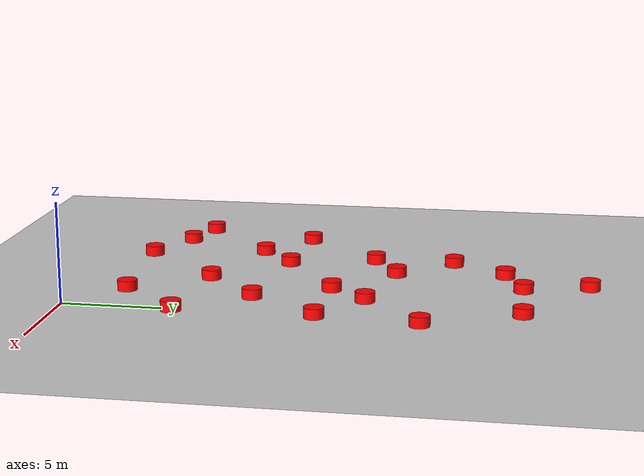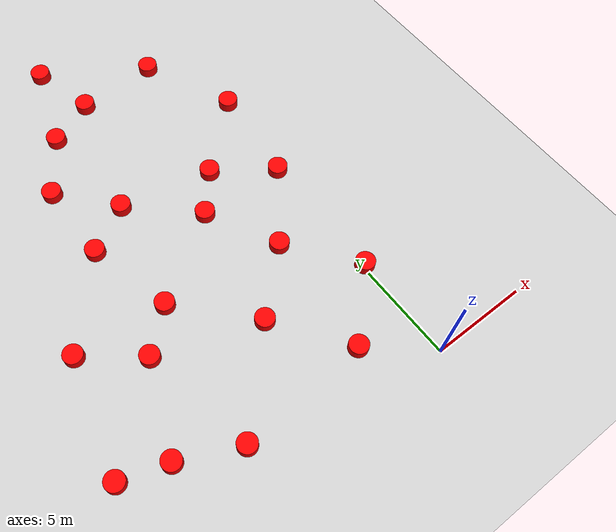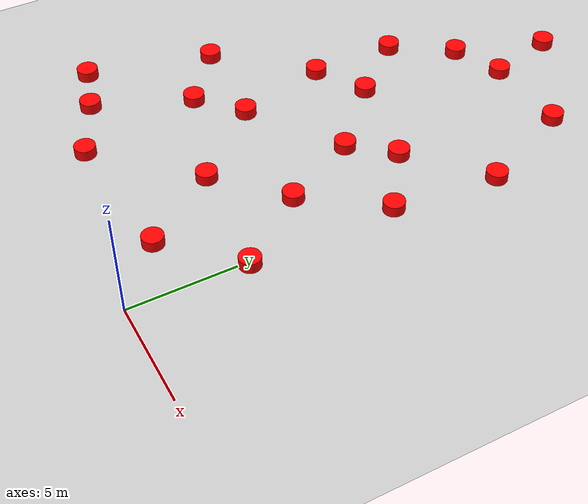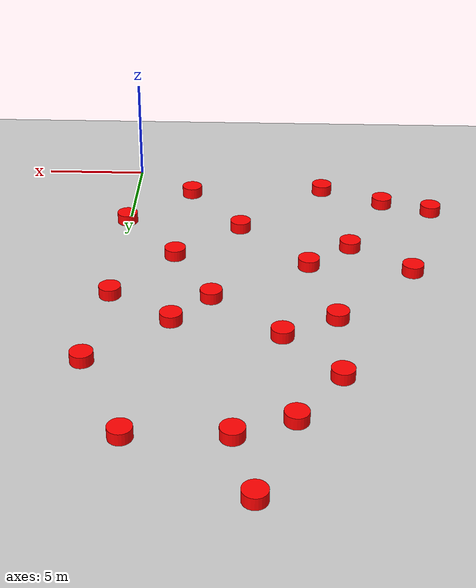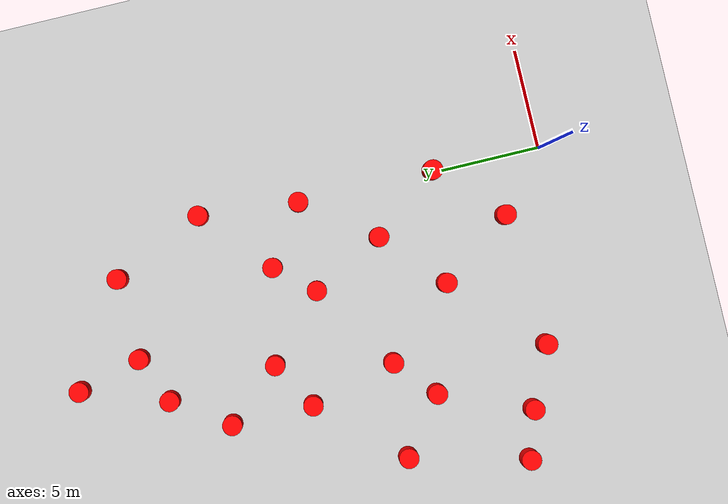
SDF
<sdf version="1.7">
 <world name="default">
  <model name="ground_plane">
   <static>1</static>
   <link name="link">
    <collision name="collision">
     <geometry><plane><normal>0 0 1</normal><size>100 100</size></plane></geometry>
     <surface><friction><ode><mu>100</mu><mu2>50</mu2></ode></friction></surface>
    </collision>
    <visual name="visual">
     <cast_shadows>0</cast_shadows>
     <geometry><plane><normal>0 0 1</normal><size>100 100</size></plane></geometry>
     <material>
      <script><uri>file://media/materials/scripts/gazebo.material</uri><name>Gazebo/Grey</name></script>
     </material>
    </visual>
   </link>
  </model>
  <model name="prognocol">
   <link name="link_1">
    <inertial>
     <mass>1</mass>
     <inertia><ixx>0.145833</ixx><ixy>0</ixy><ixz>0</ixz><iyy>0.145833</iyy><iyz>0</iyz><izz>0.125</izz></inertia>
    </inertial>
    <pose>-0.052879 4.93849 0.5 0 -0 0</pose>
    <visual name="visual">
     <geometry><cylinder><radius>0.5</radius><length>1</length></cylinder></geometry>
     <material>
      <lighting>1</lighting>
      <script><uri>file://media/materials/scripts/gazebo.material</uri><name>Gazebo/Grey</name></script>
      <shader type="pixel"><normal_map>__default__</normal_map></shader>
      <ambient>1 0 0 0</ambient>
      <diffuse>0.7 0.7 0.7 1</diffuse>
      <specular>0.01 0.01 0.01 1</specular>
      <emissive>0 0 0 1</emissive>
     </material>
    </visual>
    <collision name="collision">
     <geometry><cylinder><radius>0.0005</radius><length>1e-05</length></cylinder></geometry>
     <surface>
      <friction>
       <ode><mu>1</mu><mu2>1</mu2><fdir1>0 0 0</fdir1><slip1>0</slip1><slip2>0</slip2></ode>
       <torsional>
        <coefficient>1</coefficient>
        <patch_radius>0</patch_radius>
        <surface_radius>0</surface_radius>
        <use_patch_radius>1</use_patch_radius>
        <ode><slip>0</slip></ode>
       </torsional>
      </friction>
      <bounce><restitution_coefficient>0</restitution_coefficient><threshold>1e+06</threshold></bounce>
      <contact>
       <collide_without_contact>0</collide_without_contact>
       <collide_without_contact_bitmask>1</collide_without_contact_bitmask>
       <collide_bitmask>1</collide_bitmask>
       <ode>
        <soft_cfm>0</soft_cfm>
        <soft_erp>0.2</soft_erp>
        <kp>1e+13</kp>
        <kd>1</kd>
        <max_vel>0.01</max_vel>
        <min_depth>0</min_depth>
       </ode>
       <bullet>
        <split_impulse>1</split_impulse>
        <split_impulse_penetration_threshold>-0.01</split_impulse_penetration_threshold>
        <soft_cfm>0</soft_cfm>
        <soft_erp>0.2</soft_erp>
        <kp>1e+13</kp>
        <kd>1</kd>
       </bullet>
      </contact>
     </surface>
    </collision>
   </link>
   <link name="link_1_clone_1">
    <inertial>
     <mass>1</mass>
     <inertia><ixx>0.145833</ixx><ixy>0</ixy><ixz>0</ixz><iyy>0.145833</iyy><iyz>0</iyz><izz>0.125</izz></inertia>
    </inertial>
    <pose>2.98374 7.97688 0.5 0 -0 0</pose>
    <visual name="visual">
     <geometry><cylinder><radius>0.5</radius><length>1</length></cylinder></geometry>
     <material>
      <lighting>1</lighting>
      <script><uri>file://media/materials/scripts/gazebo.material</uri><name>Gazebo/Grey</name></script>
      <shader type="pixel"><normal_map>__default__</normal_map></shader>
      <ambient>1 0 0 0</ambient>
      <diffuse>0.7 0.7 0.7 1</diffuse>
      <specular>0.01 0.01 0.01 1</specular>
      <emissive>0 0 0 1</emissive>
     </material>
    </visual>
    <collision name="collision">
     <geometry><cylinder><radius>0.0005</radius><length>1e-05</length></cylinder></geometry>
     <surface>
      <friction>
       <ode><mu>1</mu><mu2>1</mu2><fdir1>0 0 0</fdir1><slip1>0</slip1><slip2>0</slip2></ode>
       <torsional>
        <coefficient>1</coefficient>
        <patch_radius>0</patch_radius>
        <surface_radius>0</surface_radius>
        <use_patch_radius>1</use_patch_radius>
        <ode><slip>0</slip></ode>
       </torsional>
      </friction>
      <bounce><restitution_coefficient>0</restitution_coefficient><threshold>1e+06</threshold></bounce>
      <contact>
       <collide_without_contact>0</collide_without_contact>
       <collide_without_contact_bitmask>1</collide_without_contact_bitmask>
       <collide_bitmask>1</collide_bitmask>
       <ode>
        <soft_cfm>0</soft_cfm>
        <soft_erp>0.2</soft_erp>
        <kp>1e+13</kp>
        <kd>1</kd>
        <max_vel>0.01</max_vel>
        <min_depth>0</min_depth>
       </ode>
       <bullet>
        <split_impulse>1</split_impulse>
        <split_impulse_penetration_threshold>-0.01</split_impulse_penetration_threshold>
        <soft_cfm>0</soft_cfm>
        <soft_erp>0.2</soft_erp>
        <kp>1e+13</kp>
        <kd>1</kd>
       </bullet>
      </contact>
     </surface>
    </collision>
   </link>
   <link name="link_1_clone_10">
    <inertial>
     <mass>1</mass>
     <inertia><ixx>0.145833</ixx><ixy>0</ixy><ixz>0</ixz><iyy>0.145833</iyy><iyz>0</iyz><izz>0.125</izz></inertia>
    </inertial>
    <pose>-7.07233 16.5239 0.5 0 -0 0</pose>
    <visual name="visual">
     <geometry><cylinder><radius>0.5</radius><length>1</length></cylinder></geometry>
     <material>
      <lighting>1</lighting>
      <script><uri>file://media/materials/scripts/gazebo.material</uri><name>Gazebo/Grey</name></script>
      <shader type="pixel"><normal_map>__default__</normal_map></shader>
      <ambient>1 0 0 0</ambient>
      <diffuse>0.7 0.7 0.7 1</diffuse>
      <specular>0.01 0.01 0.01 1</specular>
      <emissive>0 0 0 1</emissive>
     </material>
    </visual>
    <collision name="collision">
     <geometry><cylinder><radius>0.0005</radius><length>1e-05</length></cylinder></geometry>
     <surface>
      <friction>
       <ode><mu>1</mu><mu2>1</mu2><fdir1>0 0 0</fdir1><slip1>0</slip1><slip2>0</slip2></ode>
       <torsional>
        <coefficient>1</coefficient>
        <patch_radius>0</patch_radius>
        <surface_radius>0</surface_radius>
        <use_patch_radius>1</use_patch_radius>
        <ode><slip>0</slip></ode>
       </torsional>
      </friction>
      <bounce><restitution_coefficient>0</restitution_coefficient><threshold>1e+06</threshold></bounce>
      <contact>
       <collide_without_contact>0</collide_without_contact>
       <collide_without_contact_bitmask>1</collide_without_contact_bitmask>
       <collide_bitmask>1</collide_bitmask>
       <ode>
        <soft_cfm>0</soft_cfm>
        <soft_erp>0.2</soft_erp>
        <kp>1e+13</kp>
        <kd>1</kd>
        <max_vel>0.01</max_vel>
        <min_depth>0</min_depth>
       </ode>
       <bullet>
        <split_impulse>1</split_impulse>
        <split_impulse_penetration_threshold>-0.01</split_impulse_penetration_threshold>
        <soft_cfm>0</soft_cfm>
        <soft_erp>0.2</soft_erp>
        <kp>1e+13</kp>
        <kd>1</kd>
       </bullet>
      </contact>
     </surface>
    </collision>
   </link>
   <link name="link_1_clone_11">
    <inertial>
     <mass>1</mass>
     <inertia><ixx>0.145833</ixx><ixy>0</ixy><ixz>0</ixz><iyy>0.145833</iyy><iyz>0</iyz><izz>0.125</izz></inertia>
    </inertial>
    <pose>0.092599 16.9013 0.5 0 -0 0</pose>
    <visual name="visual">
     <geometry><cylinder><radius>0.5</radius><length>1</length></cylinder></geometry>
     <material>
      <lighting>1</lighting>
      <script><uri>file://media/materials/scripts/gazebo.material</uri><name>Gazebo/Grey</name></script>
      <shader type="pixel"><normal_map>__default__</normal_map></shader>
      <ambient>1 0 0 0</ambient>
      <diffuse>0.7 0.7 0.7 1</diffuse>
      <specular>0.01 0.01 0.01 1</specular>
      <emissive>0 0 0 1</emissive>
     </material>
    </visual>
    <collision name="collision">
     <geometry><cylinder><radius>0.0005</radius><length>1e-05</length></cylinder></geometry>
     <surface>
      <friction>
       <ode><mu>1</mu><mu2>1</mu2><fdir1>0 0 0</fdir1><slip1>0</slip1><slip2>0</slip2></ode>
       <torsional>
        <coefficient>1</coefficient>
        <patch_radius>0</patch_radius>
        <surface_radius>0</surface_radius>
        <use_patch_radius>1</use_patch_radius>
        <ode><slip>0</slip></ode>
       </torsional>
      </friction>
      <bounce><restitution_coefficient>0</restitution_coefficient><threshold>1e+06</threshold></bounce>
      <contact>
       <collide_without_contact>0</collide_without_contact>
       <collide_without_contact_bitmask>1</collide_without_contact_bitmask>
       <collide_bitmask>1</collide_bitmask>
       <ode>
        <soft_cfm>0</soft_cfm>
        <soft_erp>0.2</soft_erp>
        <kp>1e+13</kp>
        <kd>1</kd>
        <max_vel>0.01</max_vel>
        <min_depth>0</min_depth>
       </ode>
       <bullet>
        <split_impulse>1</split_impulse>
        <split_impulse_penetration_threshold>-0.01</split_impulse_penetration_threshold>
        <soft_cfm>0</soft_cfm>
        <soft_erp>0.2</soft_erp>
        <kp>1e+13</kp>
        <kd>1</kd>
       </bullet>
      </contact>
     </surface>
    </collision>
   </link>
   <link name="link_1_clone_12">
    <inertial>
     <mass>1</mass>
     <inertia><ixx>0.145833</ixx><ixy>0</ixy><ixz>0</ixz><iyy>0.145833</iyy><iyz>0</iyz><izz>0.125</izz></inertia>
    </inertial>
    <pose>-1.5415 15.0157 0.5 0 -0 0</pose>
    <visual name="visual">
     <geometry><cylinder><radius>0.5</radius><length>1</length></cylinder></geometry>
     <material>
      <lighting>1</lighting>
      <script><uri>file://media/materials/scripts/gazebo.material</uri><name>Gazebo/Grey</name></script>
      <shader type="pixel"><normal_map>__default__</normal_map></shader>
      <ambient>1 0 0 0</ambient>
      <diffuse>0.7 0.7 0.7 1</diffuse>
      <specular>0.01 0.01 0.01 1</specular>
      <emissive>0 0 0 1</emissive>
     </material>
    </visual>
    <collision name="collision">
     <geometry><cylinder><radius>0.0005</radius><length>1e-05</length></cylinder></geometry>
     <surface>
      <friction>
       <ode><mu>1</mu><mu2>1</mu2><fdir1>0 0 0</fdir1><slip1>0</slip1><slip2>0</slip2></ode>
       <torsional>
        <coefficient>1</coefficient>
        <patch_radius>0</patch_radius>
        <surface_radius>0</surface_radius>
        <use_patch_radius>1</use_patch_radius>
        <ode><slip>0</slip></ode>
       </torsional>
      </friction>
      <bounce><restitution_coefficient>0</restitution_coefficient><threshold>1e+06</threshold></bounce>
      <contact>
       <collide_without_contact>0</collide_without_contact>
       <collide_without_contact_bitmask>1</collide_without_contact_bitmask>
       <collide_bitmask>1</collide_bitmask>
       <ode>
        <soft_cfm>0</soft_cfm>
        <soft_erp>0.2</soft_erp>
        <kp>1e+13</kp>
        <kd>1</kd>
        <max_vel>0.01</max_vel>
        <min_depth>0</min_depth>
       </ode>
       <bullet>
        <split_impulse>1</split_impulse>
        <split_impulse_penetration_threshold>-0.01</split_impulse_penetration_threshold>
        <soft_cfm>0</soft_cfm>
        <soft_erp>0.2</soft_erp>
        <kp>1e+13</kp>
        <kd>1</kd>
       </bullet>
      </contact>
     </surface>
    </collision>
   </link>
   <link name="link_1_clone_13">
    <inertial>
     <mass>1</mass>
     <inertia><ixx>0.145833</ixx><ixy>0</ixy><ixz>0</ixz><iyy>0.145833</iyy><iyz>0</iyz><izz>0.125</izz></inertia>
    </inertial>
    <pose>0.3438 11.3696 0.5 0 -0 0</pose>
    <visual name="visual">
     <geometry><cylinder><radius>0.5</radius><length>1</length></cylinder></geometry>
     <material>
      <lighting>1</lighting>
      <script><uri>file://media/materials/scripts/gazebo.material</uri><name>Gazebo/Grey</name></script>
      <shader type="pixel"><normal_map>__default__</normal_map></shader>
      <ambient>1 0 0 0</ambient>
      <diffuse>0.7 0.7 0.7 1</diffuse>
      <specular>0.01 0.01 0.01 1</specular>
      <emissive>0 0 0 1</emissive>
     </material>
    </visual>
    <collision name="collision">
     <geometry><cylinder><radius>0.0005</radius><length>1e-05</length></cylinder></geometry>
     <surface>
      <friction>
       <ode><mu>1</mu><mu2>1</mu2><fdir1>0 0 0</fdir1><slip1>0</slip1><slip2>0</slip2></ode>
       <torsional>
        <coefficient>1</coefficient>
        <patch_radius>0</patch_radius>
        <surface_radius>0</surface_radius>
        <use_patch_radius>1</use_patch_radius>
        <ode><slip>0</slip></ode>
       </torsional>
      </friction>
      <bounce><restitution_coefficient>0</restitution_coefficient><threshold>1e+06</threshold></bounce>
      <contact>
       <collide_without_contact>0</collide_without_contact>
       <collide_without_contact_bitmask>1</collide_without_contact_bitmask>
       <collide_bitmask>1</collide_bitmask>
       <ode>
        <soft_cfm>0</soft_cfm>
        <soft_erp>0.2</soft_erp>
        <kp>1e+13</kp>
        <kd>1</kd>
        <max_vel>0.01</max_vel>
        <min_depth>0</min_depth>
       </ode>
       <bullet>
        <split_impulse>1</split_impulse>
        <split_impulse_penetration_threshold>-0.01</split_impulse_penetration_threshold>
        <soft_cfm>0</soft_cfm>
        <soft_erp>0.2</soft_erp>
        <kp>1e+13</kp>
        <kd>1</kd>
       </bullet>
      </contact>
     </surface>
    </collision>
   </link>
   <link name="link_1_clone_15">
    <inertial>
     <mass>1</mass>
     <inertia><ixx>0.145833</ixx><ixy>0</ixy><ixz>0</ixz><iyy>0.145833</iyy><iyz>0</iyz><izz>0.125</izz></inertia>
    </inertial>
    <pose>-2.67269 8.6054 0.5 0 -0 0</pose>
    <visual name="visual">
     <geometry><cylinder><radius>0.5</radius><length>1</length></cylinder></geometry>
     <material>
      <lighting>1</lighting>
      <script><uri>file://media/materials/scripts/gazebo.material</uri><name>Gazebo/Grey</name></script>
      <shader type="pixel"><normal_map>__default__</normal_map></shader>
      <ambient>1 0 0 0</ambient>
      <diffuse>0.7 0.7 0.7 1</diffuse>
      <specular>0.01 0.01 0.01 1</specular>
      <emissive>0 0 0 1</emissive>
     </material>
    </visual>
    <collision name="collision">
     <geometry><cylinder><radius>0.0005</radius><length>1e-05</length></cylinder></geometry>
     <surface>
      <friction>
       <ode><mu>1</mu><mu2>1</mu2><fdir1>0 0 0</fdir1><slip1>0</slip1><slip2>0</slip2></ode>
       <torsional>
        <coefficient>1</coefficient>
        <patch_radius>0</patch_radius>
        <surface_radius>0</surface_radius>
        <use_patch_radius>1</use_patch_radius>
        <ode><slip>0</slip></ode>
       </torsional>
      </friction>
      <bounce><restitution_coefficient>0</restitution_coefficient><threshold>1e+06</threshold></bounce>
      <contact>
       <collide_without_contact>0</collide_without_contact>
       <collide_without_contact_bitmask>1</collide_without_contact_bitmask>
       <collide_bitmask>1</collide_bitmask>
       <ode>
        <soft_cfm>0</soft_cfm>
        <soft_erp>0.2</soft_erp>
        <kp>1e+13</kp>
        <kd>1</kd>
        <max_vel>0.01</max_vel>
        <min_depth>0</min_depth>
       </ode>
       <bullet>
        <split_impulse>1</split_impulse>
        <split_impulse_penetration_threshold>-0.01</split_impulse_penetration_threshold>
        <soft_cfm>0</soft_cfm>
        <soft_erp>0.2</soft_erp>
        <kp>1e+13</kp>
        <kd>1</kd>
       </bullet>
      </contact>
     </surface>
    </collision>
   </link>
   <link name="link_1_clone_17">
    <inertial>
     <mass>1</mass>
     <inertia><ixx>0.145833</ixx><ixy>0</ixy><ixz>0</ixz><iyy>0.145833</iyy><iyz>0</iyz><izz>0.125</izz></inertia>
    </inertial>
    <pose>-6.82061 4.45695 0.5 0 -0 0</pose>
    <visual name="visual">
     <geometry><cylinder><radius>0.5</radius><length>1</length></cylinder></geometry>
     <material>
      <lighting>1</lighting>
      <script><uri>file://media/materials/scripts/gazebo.material</uri><name>Gazebo/Grey</name></script>
      <shader type="pixel"><normal_map>__default__</normal_map></shader>
      <ambient>1 0 0 0</ambient>
      <diffuse>0.7 0.7 0.7 1</diffuse>
      <specular>0.01 0.01 0.01 1</specular>
      <emissive>0 0 0 1</emissive>
     </material>
    </visual>
    <collision name="collision">
     <geometry><cylinder><radius>0.0005</radius><length>1e-05</length></cylinder></geometry>
     <surface>
      <friction>
       <ode><mu>1</mu><mu2>1</mu2><fdir1>0 0 0</fdir1><slip1>0</slip1><slip2>0</slip2></ode>
       <torsional>
        <coefficient>1</coefficient>
        <patch_radius>0</patch_radius>
        <surface_radius>0</surface_radius>
        <use_patch_radius>1</use_patch_radius>
        <ode><slip>0</slip></ode>
       </torsional>
      </friction>
      <bounce><restitution_coefficient>0</restitution_coefficient><threshold>1e+06</threshold></bounce>
      <contact>
       <collide_without_contact>0</collide_without_contact>
       <collide_without_contact_bitmask>1</collide_without_contact_bitmask>
       <collide_bitmask>1</collide_bitmask>
       <ode>
        <soft_cfm>0</soft_cfm>
        <soft_erp>0.2</soft_erp>
        <kp>1e+13</kp>
        <kd>1</kd>
        <max_vel>0.01</max_vel>
        <min_depth>0</min_depth>
       </ode>
       <bullet>
        <split_impulse>1</split_impulse>
        <split_impulse_penetration_threshold>-0.01</split_impulse_penetration_threshold>
        <soft_cfm>0</soft_cfm>
        <soft_erp>0.2</soft_erp>
        <kp>1e+13</kp>
        <kd>1</kd>
       </bullet>
      </contact>
     </surface>
    </collision>
   </link>
   <link name="link_1_clone_18">
    <inertial>
     <mass>1</mass>
     <inertia><ixx>0.145833</ixx><ixy>0</ixy><ixz>0</ixz><iyy>0.145833</iyy><iyz>0</iyz><izz>0.125</izz></inertia>
    </inertial>
    <pose>-9.83736 5.84012 0.5 0 -0 0</pose>
    <visual name="visual">
     <geometry><cylinder><radius>0.5</radius><length>1</length></cylinder></geometry>
     <material>
      <lighting>1</lighting>
      <script><uri>file://media/materials/scripts/gazebo.material</uri><name>Gazebo/Grey</name></script>
      <shader type="pixel"><normal_map>__default__</normal_map></shader>
      <ambient>1 0 0 0</ambient>
      <diffuse>0.7 0.7 0.7 1</diffuse>
      <specular>0.01 0.01 0.01 1</specular>
      <emissive>0 0 0 1</emissive>
     </material>
    </visual>
    <collision name="collision">
     <geometry><cylinder><radius>0.0005</radius><length>1e-05</length></cylinder></geometry>
     <surface>
      <friction>
       <ode><mu>1</mu><mu2>1</mu2><fdir1>0 0 0</fdir1><slip1>0</slip1><slip2>0</slip2></ode>
       <torsional>
        <coefficient>1</coefficient>
        <patch_radius>0</patch_radius>
        <surface_radius>0</surface_radius>
        <use_patch_radius>1</use_patch_radius>
        <ode><slip>0</slip></ode>
       </torsional>
      </friction>
      <bounce><restitution_coefficient>0</restitution_coefficient><threshold>1e+06</threshold></bounce>
      <contact>
       <collide_without_contact>0</collide_without_contact>
       <collide_without_contact_bitmask>1</collide_without_contact_bitmask>
       <collide_bitmask>1</collide_bitmask>
       <ode>
        <soft_cfm>0</soft_cfm>
        <soft_erp>0.2</soft_erp>
        <kp>1e+13</kp>
        <kd>1</kd>
        <max_vel>0.01</max_vel>
        <min_depth>0</min_depth>
       </ode>
       <bullet>
        <split_impulse>1</split_impulse>
        <split_impulse_penetration_threshold>-0.01</split_impulse_penetration_threshold>
        <soft_cfm>0</soft_cfm>
        <soft_erp>0.2</soft_erp>
        <kp>1e+13</kp>
        <kd>1</kd>
       </bullet>
      </contact>
     </surface>
    </collision>
   </link>
   <link name="link_1_clone_19">
    <inertial>
     <mass>1</mass>
     <inertia><ixx>0.145833</ixx><ixy>0</ixy><ixz>0</ixz><iyy>0.145833</iyy><iyz>0</iyz><izz>0.125</izz></inertia>
    </inertial>
    <pose>-12.2258 6.59372 0.5 0 -0 0</pose>
    <visual name="visual">
     <geometry><cylinder><radius>0.5</radius><length>1</length></cylinder></geometry>
     <material>
      <lighting>1</lighting>
      <script><uri>file://media/materials/scripts/gazebo.material</uri><name>Gazebo/Grey</name></script>
      <shader type="pixel"><normal_map>__default__</normal_map></shader>
      <ambient>1 0 0 0</ambient>
      <diffuse>0.7 0.7 0.7 1</diffuse>
      <specular>0.01 0.01 0.01 1</specular>
      <emissive>0 0 0 1</emissive>
     </material>
    </visual>
    <collision name="collision">
     <geometry><cylinder><radius>0.0005</radius><length>1e-05</length></cylinder></geometry>
     <surface>
      <friction>
       <ode><mu>1</mu><mu2>1</mu2><fdir1>0 0 0</fdir1><slip1>0</slip1><slip2>0</slip2></ode>
       <torsional>
        <coefficient>1</coefficient>
        <patch_radius>0</patch_radius>
        <surface_radius>0</surface_radius>
        <use_patch_radius>1</use_patch_radius>
        <ode><slip>0</slip></ode>
       </torsional>
      </friction>
      <bounce><restitution_coefficient>0</restitution_coefficient><threshold>1e+06</threshold></bounce>
      <contact>
       <collide_without_contact>0</collide_without_contact>
       <collide_without_contact_bitmask>1</collide_without_contact_bitmask>
       <collide_bitmask>1</collide_bitmask>
       <ode>
        <soft_cfm>0</soft_cfm>
        <soft_erp>0.2</soft_erp>
        <kp>1e+13</kp>
        <kd>1</kd>
        <max_vel>0.01</max_vel>
        <min_depth>0</min_depth>
       </ode>
       <bullet>
        <split_impulse>1</split_impulse>
        <split_impulse_penetration_threshold>-0.01</split_impulse_penetration_threshold>
        <soft_cfm>0</soft_cfm>
        <soft_erp>0.2</soft_erp>
        <kp>1e+13</kp>
        <kd>1</kd>
       </bullet>
      </contact>
     </surface>
    </collision>
   </link>
   <link name="link_1_clone_2">
    <inertial>
     <mass>1</mass>
     <inertia><ixx>0.145833</ixx><ixy>0</ixy><ixz>0</ixz><iyy>0.145833</iyy><iyz>0</iyz><izz>0.125</izz></inertia>
    </inertial>
    <pose>2.98374 14.8896 0.5 0 -0 0</pose>
    <visual name="visual">
     <geometry><cylinder><radius>0.5</radius><length>1</length></cylinder></geometry>
     <material>
      <lighting>1</lighting>
      <script><uri>file://media/materials/scripts/gazebo.material</uri><name>Gazebo/Grey</name></script>
      <shader type="pixel"><normal_map>__default__</normal_map></shader>
      <ambient>1 0 0 0</ambient>
      <diffuse>0.7 0.7 0.7 1</diffuse>
      <specular>0.01 0.01 0.01 1</specular>
      <emissive>0 0 0 1</emissive>
     </material>
    </visual>
    <collision name="collision">
     <geometry><cylinder><radius>0.0005</radius><length>1e-05</length></cylinder></geometry>
     <surface>
      <friction>
       <ode><mu>1</mu><mu2>1</mu2><fdir1>0 0 0</fdir1><slip1>0</slip1><slip2>0</slip2></ode>
       <torsional>
        <coefficient>1</coefficient>
        <patch_radius>0</patch_radius>
        <surface_radius>0</surface_radius>
        <use_patch_radius>1</use_patch_radius>
        <ode><slip>0</slip></ode>
       </torsional>
      </friction>
      <bounce><restitution_coefficient>0</restitution_coefficient><threshold>1e+06</threshold></bounce>
      <contact>
       <collide_without_contact>0</collide_without_contact>
       <collide_without_contact_bitmask>1</collide_without_contact_bitmask>
       <collide_bitmask>1</collide_bitmask>
       <ode>
        <soft_cfm>0</soft_cfm>
        <soft_erp>0.2</soft_erp>
        <kp>1e+13</kp>
        <kd>1</kd>
        <max_vel>0.01</max_vel>
        <min_depth>0</min_depth>
       </ode>
       <bullet>
        <split_impulse>1</split_impulse>
        <split_impulse_penetration_threshold>-0.01</split_impulse_penetration_threshold>
        <soft_cfm>0</soft_cfm>
        <soft_erp>0.2</soft_erp>
        <kp>1e+13</kp>
        <kd>1</kd>
       </bullet>
      </contact>
     </surface>
    </collision>
   </link>
   <link name="link_1_clone_20">
    <inertial>
     <mass>1</mass>
     <inertia><ixx>0.145833</ixx><ixy>0</ixy><ixz>0</ixz><iyy>0.145833</iyy><iyz>0</iyz><izz>0.125</izz></inertia>
    </inertial>
    <pose>-5.94063 12.1253 0.5 0 -0 0</pose>
    <visual name="visual">
     <geometry><cylinder><radius>0.5</radius><length>1</length></cylinder></geometry>
     <material>
      <lighting>1</lighting>
      <script><uri>file://media/materials/scripts/gazebo.material</uri><name>Gazebo/Grey</name></script>
      <shader type="pixel"><normal_map>__default__</normal_map></shader>
      <ambient>1 0 0 0</ambient>
      <diffuse>0.7 0.7 0.7 1</diffuse>
      <specular>0.01 0.01 0.01 1</specular>
      <emissive>0 0 0 1</emissive>
     </material>
    </visual>
    <collision name="collision">
     <geometry><cylinder><radius>0.0005</radius><length>1e-05</length></cylinder></geometry>
     <surface>
      <friction>
       <ode><mu>1</mu><mu2>1</mu2><fdir1>0 0 0</fdir1><slip1>0</slip1><slip2>0</slip2></ode>
       <torsional>
        <coefficient>1</coefficient>
        <patch_radius>0</patch_radius>
        <surface_radius>0</surface_radius>
        <use_patch_radius>1</use_patch_radius>
        <ode><slip>0</slip></ode>
       </torsional>
      </friction>
      <bounce><restitution_coefficient>0</restitution_coefficient><threshold>1e+06</threshold></bounce>
      <contact>
       <collide_without_contact>0</collide_without_contact>
       <collide_without_contact_bitmask>1</collide_without_contact_bitmask>
       <collide_bitmask>1</collide_bitmask>
       <ode>
        <soft_cfm>0</soft_cfm>
        <soft_erp>0.2</soft_erp>
        <kp>1e+13</kp>
        <kd>1</kd>
        <max_vel>0.01</max_vel>
        <min_depth>0</min_depth>
       </ode>
       <bullet>
        <split_impulse>1</split_impulse>
        <split_impulse_penetration_threshold>-0.01</split_impulse_penetration_threshold>
        <soft_cfm>0</soft_cfm>
        <soft_erp>0.2</soft_erp>
        <kp>1e+13</kp>
        <kd>1</kd>
       </bullet>
      </contact>
     </surface>
    </collision>
   </link>
   <link name="link_1_clone_21">
    <inertial>
     <mass>1</mass>
     <inertia><ixx>0.145833</ixx><ixy>0</ixy><ixz>0</ixz><iyy>0.145833</iyy><iyz>0</iyz><izz>0.125</izz></inertia>
    </inertial>
    <pose>-7.95206 10.3648 0.5 0 -0 0</pose>
    <visual name="visual">
     <geometry><cylinder><radius>0.5</radius><length>1</length></cylinder></geometry>
     <material>
      <lighting>1</lighting>
      <script><uri>file://media/materials/scripts/gazebo.material</uri><name>Gazebo/Grey</name></script>
      <shader type="pixel"><normal_map>__default__</normal_map></shader>
      <ambient>1 0 0 0</ambient>
      <diffuse>0.7 0.7 0.7 1</diffuse>
      <specular>0.01 0.01 0.01 1</specular>
      <emissive>0 0 0 1</emissive>
     </material>
    </visual>
    <collision name="collision">
     <geometry><cylinder><radius>0.0005</radius><length>1e-05</length></cylinder></geometry>
     <surface>
      <friction>
       <ode><mu>1</mu><mu2>1</mu2><fdir1>0 0 0</fdir1><slip1>0</slip1><slip2>0</slip2></ode>
       <torsional>
        <coefficient>1</coefficient>
        <patch_radius>0</patch_radius>
        <surface_radius>0</surface_radius>
        <use_patch_radius>1</use_patch_radius>
        <ode><slip>0</slip></ode>
       </torsional>
      </friction>
      <bounce><restitution_coefficient>0</restitution_coefficient><threshold>1e+06</threshold></bounce>
      <contact>
       <collide_without_contact>0</collide_without_contact>
       <collide_without_contact_bitmask>1</collide_without_contact_bitmask>
       <collide_bitmask>1</collide_bitmask>
       <ode>
        <soft_cfm>0</soft_cfm>
        <soft_erp>0.2</soft_erp>
        <kp>1e+13</kp>
        <kd>1</kd>
        <max_vel>0.01</max_vel>
        <min_depth>0</min_depth>
       </ode>
       <bullet>
        <split_impulse>1</split_impulse>
        <split_impulse_penetration_threshold>-0.01</split_impulse_penetration_threshold>
        <soft_cfm>0</soft_cfm>
        <soft_erp>0.2</soft_erp>
        <kp>1e+13</kp>
        <kd>1</kd>
       </bullet>
      </contact>
     </surface>
    </collision>
   </link>
   <link name="link_1_clone_22">
    <inertial>
     <mass>1</mass>
     <inertia><ixx>0.145833</ixx><ixy>0</ixy><ixz>0</ixz><iyy>0.145833</iyy><iyz>0</iyz><izz>0.125</izz></inertia>
    </inertial>
    <pose>-10.7173 12.5016 0.5 0 -0 0</pose>
    <visual name="visual">
     <geometry><cylinder><radius>0.5</radius><length>1</length></cylinder></geometry>
     <material>
      <lighting>1</lighting>
      <script><uri>file://media/materials/scripts/gazebo.material</uri><name>Gazebo/Grey</name></script>
      <shader type="pixel"><normal_map>__default__</normal_map></shader>
      <ambient>1 0 0 0</ambient>
      <diffuse>0.7 0.7 0.7 1</diffuse>
      <specular>0.01 0.01 0.01 1</specular>
      <emissive>0 0 0 1</emissive>
     </material>
    </visual>
    <collision name="collision">
     <geometry><cylinder><radius>0.0005</radius><length>1e-05</length></cylinder></geometry>
     <surface>
      <friction>
       <ode><mu>1</mu><mu2>1</mu2><fdir1>0 0 0</fdir1><slip1>0</slip1><slip2>0</slip2></ode>
       <torsional>
        <coefficient>1</coefficient>
        <patch_radius>0</patch_radius>
        <surface_radius>0</surface_radius>
        <use_patch_radius>1</use_patch_radius>
        <ode><slip>0</slip></ode>
       </torsional>
      </friction>
      <bounce><restitution_coefficient>0</restitution_coefficient><threshold>1e+06</threshold></bounce>
      <contact>
       <collide_without_contact>0</collide_without_contact>
       <collide_without_contact_bitmask>1</collide_without_contact_bitmask>
       <collide_bitmask>1</collide_bitmask>
       <ode>
        <soft_cfm>0</soft_cfm>
        <soft_erp>0.2</soft_erp>
        <kp>1e+13</kp>
        <kd>1</kd>
        <max_vel>0.01</max_vel>
        <min_depth>0</min_depth>
       </ode>
       <bullet>
        <split_impulse>1</split_impulse>
        <split_impulse_penetration_threshold>-0.01</split_impulse_penetration_threshold>
        <soft_cfm>0</soft_cfm>
        <soft_erp>0.2</soft_erp>
        <kp>1e+13</kp>
        <kd>1</kd>
       </bullet>
      </contact>
     </surface>
    </collision>
   </link>
   <link name="link_1_clone_3">
    <inertial>
     <mass>1</mass>
     <inertia><ixx>0.145833</ixx><ixy>0</ixy><ixz>0</ixz><iyy>0.145833</iyy><iyz>0</iyz><izz>0.125</izz></inertia>
    </inertial>
    <pose>3.48641 19.9177 0.5 0 -0 0</pose>
    <visual name="visual">
     <geometry><cylinder><radius>0.5</radius><length>1</length></cylinder></geometry>
     <material>
      <lighting>1</lighting>
      <script><uri>file://media/materials/scripts/gazebo.material</uri><name>Gazebo/Grey</name></script>
      <shader type="pixel"><normal_map>__default__</normal_map></shader>
      <ambient>1 0 0 0</ambient>
      <diffuse>0.7 0.7 0.7 1</diffuse>
      <specular>0.01 0.01 0.01 1</specular>
      <emissive>0 0 0 1</emissive>
     </material>
    </visual>
    <collision name="collision">
     <geometry><cylinder><radius>0.0005</radius><length>1e-05</length></cylinder></geometry>
     <surface>
      <friction>
       <ode><mu>1</mu><mu2>1</mu2><fdir1>0 0 0</fdir1><slip1>0</slip1><slip2>0</slip2></ode>
       <torsional>
        <coefficient>1</coefficient>
        <patch_radius>0</patch_radius>
        <surface_radius>0</surface_radius>
        <use_patch_radius>1</use_patch_radius>
        <ode><slip>0</slip></ode>
       </torsional>
      </friction>
      <bounce><restitution_coefficient>0</restitution_coefficient><threshold>1e+06</threshold></bounce>
      <contact>
       <collide_without_contact>0</collide_without_contact>
       <collide_without_contact_bitmask>1</collide_without_contact_bitmask>
       <collide_bitmask>1</collide_bitmask>
       <ode>
        <soft_cfm>0</soft_cfm>
        <soft_erp>0.2</soft_erp>
        <kp>1e+13</kp>
        <kd>1</kd>
        <max_vel>0.01</max_vel>
        <min_depth>0</min_depth>
       </ode>
       <bullet>
        <split_impulse>1</split_impulse>
        <split_impulse_penetration_threshold>-0.01</split_impulse_penetration_threshold>
        <soft_cfm>0</soft_cfm>
        <soft_erp>0.2</soft_erp>
        <kp>1e+13</kp>
        <kd>1</kd>
       </bullet>
      </contact>
     </surface>
    </collision>
   </link>
   <link name="link_1_clone_4">
    <inertial>
     <mass>1</mass>
     <inertia><ixx>0.145833</ixx><ixy>0</ixy><ixz>0</ixz><iyy>0.145833</iyy><iyz>0</iyz><izz>0.125</izz></inertia>
    </inertial>
    <pose>1.34938 24.5696 0.5 0 -0 0</pose>
    <visual name="visual">
     <geometry><cylinder><radius>0.5</radius><length>1</length></cylinder></geometry>
     <material>
      <lighting>1</lighting>
      <script><uri>file://media/materials/scripts/gazebo.material</uri><name>Gazebo/Grey</name></script>
      <shader type="pixel"><normal_map>__default__</normal_map></shader>
      <ambient>1 0 0 0</ambient>
      <diffuse>0.7 0.7 0.7 1</diffuse>
      <specular>0.01 0.01 0.01 1</specular>
      <emissive>0 0 0 1</emissive>
     </material>
    </visual>
    <collision name="collision">
     <geometry><cylinder><radius>0.0005</radius><length>1e-05</length></cylinder></geometry>
     <surface>
      <friction>
       <ode><mu>1</mu><mu2>1</mu2><fdir1>0 0 0</fdir1><slip1>0</slip1><slip2>0</slip2></ode>
       <torsional>
        <coefficient>1</coefficient>
        <patch_radius>0</patch_radius>
        <surface_radius>0</surface_radius>
        <use_patch_radius>1</use_patch_radius>
        <ode><slip>0</slip></ode>
       </torsional>
      </friction>
      <bounce><restitution_coefficient>0</restitution_coefficient><threshold>1e+06</threshold></bounce>
      <contact>
       <collide_without_contact>0</collide_without_contact>
       <collide_without_contact_bitmask>1</collide_without_contact_bitmask>
       <collide_bitmask>1</collide_bitmask>
       <ode>
        <soft_cfm>0</soft_cfm>
        <soft_erp>0.2</soft_erp>
        <kp>1e+13</kp>
        <kd>1</kd>
        <max_vel>0.01</max_vel>
        <min_depth>0</min_depth>
       </ode>
       <bullet>
        <split_impulse>1</split_impulse>
        <split_impulse_penetration_threshold>-0.01</split_impulse_penetration_threshold>
        <soft_cfm>0</soft_cfm>
        <soft_erp>0.2</soft_erp>
        <kp>1e+13</kp>
        <kd>1</kd>
       </bullet>
      </contact>
     </surface>
    </collision>
   </link>
   <link name="link_1_clone_5">
    <inertial>
     <mass>1</mass>
     <inertia><ixx>0.145833</ixx><ixy>0</ixy><ixz>0</ixz><iyy>0.145833</iyy><iyz>0</iyz><izz>0.125</izz></inertia>
    </inertial>
    <pose>-3.67827 27.7102 0.5 0 -0 0</pose>
    <visual name="visual">
     <geometry><cylinder><radius>0.5</radius><length>1</length></cylinder></geometry>
     <material>
      <lighting>1</lighting>
      <script><uri>file://media/materials/scripts/gazebo.material</uri><name>Gazebo/Grey</name></script>
      <shader type="pixel"><normal_map>__default__</normal_map></shader>
      <ambient>1 0 0 0</ambient>
      <diffuse>0.7 0.7 0.7 1</diffuse>
      <specular>0.01 0.01 0.01 1</specular>
      <emissive>0 0 0 1</emissive>
     </material>
    </visual>
    <collision name="collision">
     <geometry><cylinder><radius>0.0005</radius><length>1e-05</length></cylinder></geometry>
     <surface>
      <friction>
       <ode><mu>1</mu><mu2>1</mu2><fdir1>0 0 0</fdir1><slip1>0</slip1><slip2>0</slip2></ode>
       <torsional>
        <coefficient>1</coefficient>
        <patch_radius>0</patch_radius>
        <surface_radius>0</surface_radius>
        <use_patch_radius>1</use_patch_radius>
        <ode><slip>0</slip></ode>
       </torsional>
      </friction>
      <bounce><restitution_coefficient>0</restitution_coefficient><threshold>1e+06</threshold></bounce>
      <contact>
       <collide_without_contact>0</collide_without_contact>
       <collide_without_contact_bitmask>1</collide_without_contact_bitmask>
       <collide_bitmask>1</collide_bitmask>
       <ode>
        <soft_cfm>0</soft_cfm>
        <soft_erp>0.2</soft_erp>
        <kp>1e+13</kp>
        <kd>1</kd>
        <max_vel>0.01</max_vel>
        <min_depth>0</min_depth>
       </ode>
       <bullet>
        <split_impulse>1</split_impulse>
        <split_impulse_penetration_threshold>-0.01</split_impulse_penetration_threshold>
        <soft_cfm>0</soft_cfm>
        <soft_erp>0.2</soft_erp>
        <kp>1e+13</kp>
        <kd>1</kd>
       </bullet>
      </contact>
     </surface>
    </collision>
   </link>
   <link name="link_1_clone_6">
    <inertial>
     <mass>1</mass>
     <inertia><ixx>0.145833</ixx><ixy>0</ixy><ixz>0</ixz><iyy>0.145833</iyy><iyz>0</iyz><izz>0.125</izz></inertia>
    </inertial>
    <pose>-2.79855 24.4435 0.5 0 -0 0</pose>
    <visual name="visual">
     <geometry><cylinder><radius>0.5</radius><length>1</length></cylinder></geometry>
     <material>
      <lighting>1</lighting>
      <script><uri>file://media/materials/scripts/gazebo.material</uri><name>Gazebo/Grey</name></script>
      <shader type="pixel"><normal_map>__default__</normal_map></shader>
      <ambient>1 0 0 0</ambient>
      <diffuse>0.7 0.7 0.7 1</diffuse>
      <specular>0.01 0.01 0.01 1</specular>
      <emissive>0 0 0 1</emissive>
     </material>
    </visual>
    <collision name="collision">
     <geometry><cylinder><radius>0.0005</radius><length>1e-05</length></cylinder></geometry>
     <surface>
      <friction>
       <ode><mu>1</mu><mu2>1</mu2><fdir1>0 0 0</fdir1><slip1>0</slip1><slip2>0</slip2></ode>
       <torsional>
        <coefficient>1</coefficient>
        <patch_radius>0</patch_radius>
        <surface_radius>0</surface_radius>
        <use_patch_radius>1</use_patch_radius>
        <ode><slip>0</slip></ode>
       </torsional>
      </friction>
      <bounce><restitution_coefficient>0</restitution_coefficient><threshold>1e+06</threshold></bounce>
      <contact>
       <collide_without_contact>0</collide_without_contact>
       <collide_without_contact_bitmask>1</collide_without_contact_bitmask>
       <collide_bitmask>1</collide_bitmask>
       <ode>
        <soft_cfm>0</soft_cfm>
        <soft_erp>0.2</soft_erp>
        <kp>1e+13</kp>
        <kd>1</kd>
        <max_vel>0.01</max_vel>
        <min_depth>0</min_depth>
       </ode>
       <bullet>
        <split_impulse>1</split_impulse>
        <split_impulse_penetration_threshold>-0.01</split_impulse_penetration_threshold>
        <soft_cfm>0</soft_cfm>
        <soft_erp>0.2</soft_erp>
        <kp>1e+13</kp>
        <kd>1</kd>
       </bullet>
      </contact>
     </surface>
    </collision>
   </link>
   <link name="link_1_clone_7">
    <inertial>
     <mass>1</mass>
     <inertia><ixx>0.145833</ixx><ixy>0</ixy><ixz>0</ixz><iyy>0.145833</iyy><iyz>0</iyz><izz>0.125</izz></inertia>
    </inertial>
    <pose>-5.18677 23.4366 0.5 0 -0 0</pose>
    <visual name="visual">
     <geometry><cylinder><radius>0.5</radius><length>1</length></cylinder></geometry>
     <material>
      <lighting>1</lighting>
      <script><uri>file://media/materials/scripts/gazebo.material</uri><name>Gazebo/Grey</name></script>
      <shader type="pixel"><normal_map>__default__</normal_map></shader>
      <ambient>1 0 0 0</ambient>
      <diffuse>0.7 0.7 0.7 1</diffuse>
      <specular>0.01 0.01 0.01 1</specular>
      <emissive>0 0 0 1</emissive>
     </material>
    </visual>
    <collision name="collision">
     <geometry><cylinder><radius>0.0005</radius><length>1e-05</length></cylinder></geometry>
     <surface>
      <friction>
       <ode><mu>1</mu><mu2>1</mu2><fdir1>0 0 0</fdir1><slip1>0</slip1><slip2>0</slip2></ode>
       <torsional>
        <coefficient>1</coefficient>
        <patch_radius>0</patch_radius>
        <surface_radius>0</surface_radius>
        <use_patch_radius>1</use_patch_radius>
        <ode><slip>0</slip></ode>
       </torsional>
      </friction>
      <bounce><restitution_coefficient>0</restitution_coefficient><threshold>1e+06</threshold></bounce>
      <contact>
       <collide_without_contact>0</collide_without_contact>
       <collide_without_contact_bitmask>1</collide_without_contact_bitmask>
       <collide_bitmask>1</collide_bitmask>
       <ode>
        <soft_cfm>0</soft_cfm>
        <soft_erp>0.2</soft_erp>
        <kp>1e+13</kp>
        <kd>1</kd>
        <max_vel>0.01</max_vel>
        <min_depth>0</min_depth>
       </ode>
       <bullet>
        <split_impulse>1</split_impulse>
        <split_impulse_penetration_threshold>-0.01</split_impulse_penetration_threshold>
        <soft_cfm>0</soft_cfm>
        <soft_erp>0.2</soft_erp>
        <kp>1e+13</kp>
        <kd>1</kd>
       </bullet>
      </contact>
     </surface>
    </collision>
   </link>
   <link name="link_1_clone_8">
    <inertial>
     <mass>1</mass>
     <inertia><ixx>0.145833</ixx><ixy>0</ixy><ixz>0</ixz><iyy>0.145833</iyy><iyz>0</iyz><izz>0.125</izz></inertia>
    </inertial>
    <pose>-7.07233 20.6713 0.5 0 -0 0</pose>
    <visual name="visual">
     <geometry><cylinder><radius>0.5</radius><length>1</length></cylinder></geometry>
     <material>
      <lighting>1</lighting>
      <script><uri>file://media/materials/scripts/gazebo.material</uri><name>Gazebo/Grey</name></script>
      <shader type="pixel"><normal_map>__default__</normal_map></shader>
      <ambient>1 0 0 0</ambient>
      <diffuse>0.7 0.7 0.7 1</diffuse>
      <specular>0.01 0.01 0.01 1</specular>
      <emissive>0 0 0 1</emissive>
     </material>
    </visual>
    <collision name="collision">
     <geometry><cylinder><radius>0.0005</radius><length>1e-05</length></cylinder></geometry>
     <surface>
      <friction>
       <ode><mu>1</mu><mu2>1</mu2><fdir1>0 0 0</fdir1><slip1>0</slip1><slip2>0</slip2></ode>
       <torsional>
        <coefficient>1</coefficient>
        <patch_radius>0</patch_radius>
        <surface_radius>0</surface_radius>
        <use_patch_radius>1</use_patch_radius>
        <ode><slip>0</slip></ode>
       </torsional>
      </friction>
      <bounce><restitution_coefficient>0</restitution_coefficient><threshold>1e+06</threshold></bounce>
      <contact>
       <collide_without_contact>0</collide_without_contact>
       <collide_without_contact_bitmask>1</collide_without_contact_bitmask>
       <collide_bitmask>1</collide_bitmask>
       <ode>
        <soft_cfm>0</soft_cfm>
        <soft_erp>0.2</soft_erp>
        <kp>1e+13</kp>
        <kd>1</kd>
        <max_vel>0.01</max_vel>
        <min_depth>0</min_depth>
       </ode>
       <bullet>
        <split_impulse>1</split_impulse>
        <split_impulse_penetration_threshold>-0.01</split_impulse_penetration_threshold>
        <soft_cfm>0</soft_cfm>
        <soft_erp>0.2</soft_erp>
        <kp>1e+13</kp>
        <kd>1</kd>
       </bullet>
      </contact>
     </surface>
    </collision>
   </link>
   <link name="link_1_clone_9">
    <inertial>
     <mass>1</mass>
     <inertia><ixx>0.145833</ixx><ixy>0</ixy><ixz>0</ixz><iyy>0.145833</iyy><iyz>0</iyz><izz>0.125</izz></inertia>
    </inertial>
    <pose>-4.68359 17.9071 0.5 0 -0 0</pose>
    <visual name="visual">
     <geometry><cylinder><radius>0.5</radius><length>1</length></cylinder></geometry>
     <material>
      <lighting>1</lighting>
      <script><uri>file://media/materials/scripts/gazebo.material</uri><name>Gazebo/Grey</name></script>
      <shader type="pixel"><normal_map>__default__</normal_map></shader>
      <ambient>1 0 0 0</ambient>
      <diffuse>0.7 0.7 0.7 1</diffuse>
      <specular>0.01 0.01 0.01 1</specular>
      <emissive>0 0 0 1</emissive>
     </material>
    </visual>
    <collision name="collision">
     <geometry><cylinder><radius>0.0005</radius><length>1e-05</length></cylinder></geometry>
     <surface>
      <friction>
       <ode><mu>1</mu><mu2>1</mu2><fdir1>0 0 0</fdir1><slip1>0</slip1><slip2>0</slip2></ode>
       <torsional>
        <coefficient>1</coefficient>
        <patch_radius>0</patch_radius>
        <surface_radius>0</surface_radius>
        <use_patch_radius>1</use_patch_radius>
        <ode><slip>0</slip></ode>
       </torsional>
      </friction>
      <bounce><restitution_coefficient>0</restitution_coefficient><threshold>1e+06</threshold></bounce>
      <contact>
       <collide_without_contact>0</collide_without_contact>
       <collide_without_contact_bitmask>1</collide_without_contact_bitmask>
       <collide_bitmask>1</collide_bitmask>
       <ode>
        <soft_cfm>0</soft_cfm>
        <soft_erp>0.2</soft_erp>
        <kp>1e+13</kp>
        <kd>1</kd>
        <max_vel>0.01</max_vel>
        <min_depth>0</min_depth>
       </ode>
       <bullet>
        <split_impulse>1</split_impulse>
        <split_impulse_penetration_threshold>-0.01</split_impulse_penetration_threshold>
        <soft_cfm>0</soft_cfm>
        <soft_erp>0.2</soft_erp>
        <kp>1e+13</kp>
        <kd>1</kd>
       </bullet>
      </contact>
     </surface>
    </collision>
   </link>
   <static>0</static>
   <pose>-2.84122 -2.48393 -0.499947 -1.4e-05 0.000244 0</pose>
  </model>
 </world>
</sdf>
